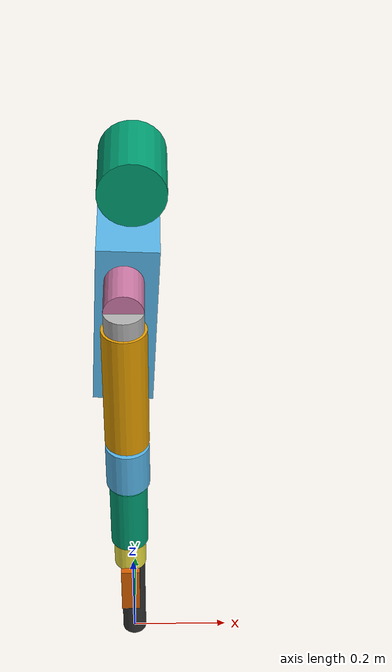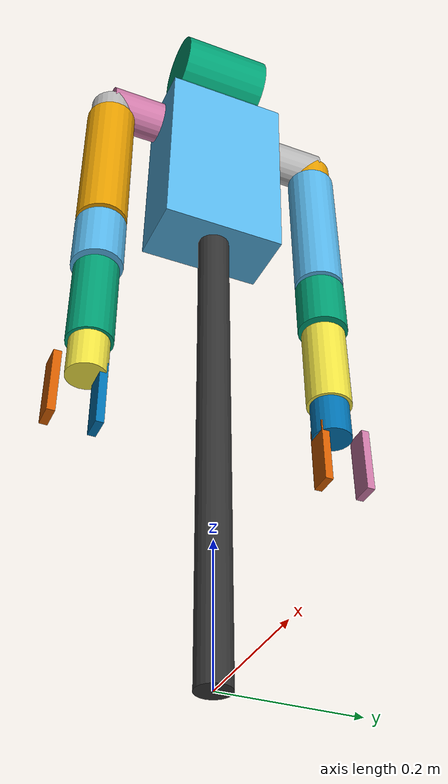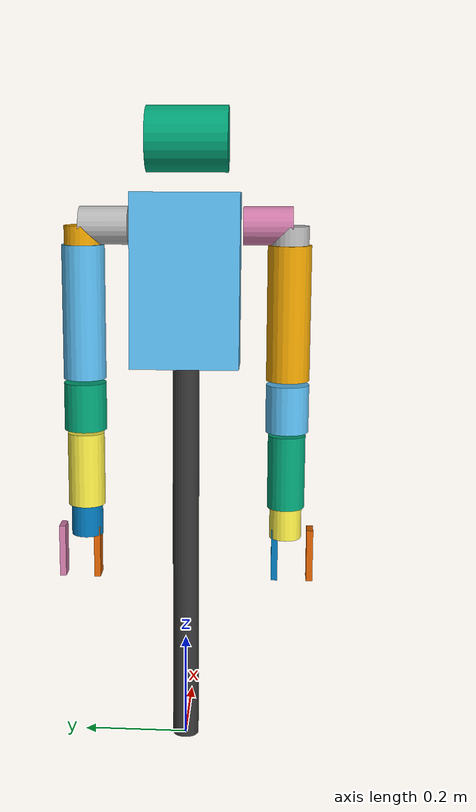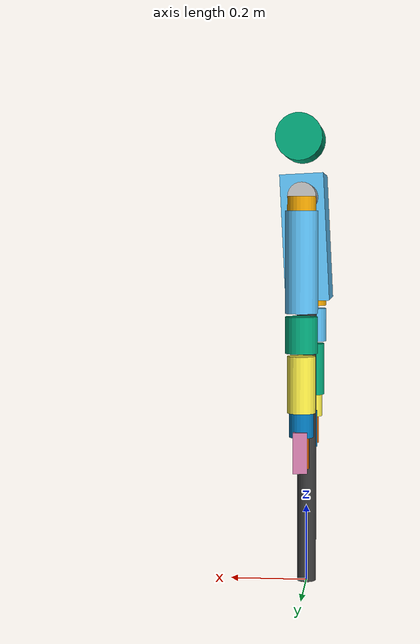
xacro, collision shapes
<?xml version="1.0"?>
<robot xmlns:xacro="http://www.ros.org/wiki/xacro" name="reachy">

<xacro:arg name="head" default="true"/>
<xacro:arg name="left_arm" default="true"/>
<xacro:arg name="right_arm" default="true"/>

<xacro:arg name="depth_camera" default="true"/>

<!-- pretty important for stability -->
<xacro:property name="damping" value="0" />
<xacro:property name="friction" value="0.1" />

<xacro:macro name="xmass" params="value"><mass value="${value}" /></xacro:macro>
<xacro:property name="camera_link" value="0.05" /> <!-- Size of square 'camera' box -->
<xacro:property name="camera_convergence" value="0.0" /> <!-- convergence angle (rad) of the cameras. 0=parallel-->

<xacro:macro name="inertial_cuboid" params="mass xyz rpy x_length y_length z_length">
  <inertial>
    <xacro:xmass value="${mass}" />
    <origin rpy="${rpy}" xyz="${xyz}"/>
    <inertia ixx="${mass * (y_length*y_length + z_length*z_length) / 12}" ixy="0.0" ixz="0.0"
             iyy="${mass * (x_length*x_length + z_length*z_length) / 12}" iyz="0.0"
             izz="${mass * (x_length*x_length + y_length*y_length) / 12}" />
  </inertial>
</xacro:macro>

<!-- Torso Link -->

  <material name="Grey">
    <color rgba="0.2 0.2 0.2 1"/>
  </material>

<link name="pedestal">
    <collision>
        <origin xyz="0 0 0.5" rpy="0 0.0 0" />
        <geometry>
	    <cylinder length="1" radius="0.025"/>
        </geometry>
    </collision>

    <visual name="">
        <origin xyz="0 0 0.5" rpy="0 0.0 0" />
        <geometry>
	    <cylinder length="1" radius="0.025"/>
        </geometry>
	 <material name="Grey"/>
    </visual>

</link>

<gazebo reference="pedestal">
  <material>Gazebo/Grey</material>
</gazebo>

<link name="torso">
    <inertial>
        <origin xyz="0.0 0.019 -0.009" rpy="0.0 0.0 0.0"/>
        <mass value="0.527"/>
        <inertia ixx="2.89598e-3" ixy="-1.16791e-6" ixz="-8.28749e-6" iyy="4.491e-3" iyz="2.343e-4" izz="3.995e-3"/>
    </inertial>
    <visual name="">
        <origin xyz="0.0 0.0 0.0" rpy="0.0 0.0 0.0"/>
        <geometry>
            <mesh filename="file://$(find reachy_description)/meshes/torso.dae"/>
        </geometry>
    </visual>
    <collision>
        <origin xyz="0 0 -0.1" rpy="0 0.05 0" />
        <geometry>
            <box size="0.11 0.2 0.32" />
        </geometry>
    </collision>
</link>

<!-- Head Links -->

<xacro:if value="$(arg head)">
<link name="head">
    <inertial>
        <origin xyz="-0.009 -0.002 0.059" rpy="0.0 0.0 0.0"/>
        <mass value="0.237"/>
        <inertia ixx="1.676e-3" ixy="3.068e-6" ixz="1.2449e-4" iyy="1.368e-3" iyz="3.360e-5" izz="8.425e-4"/>
    </inertial>
    <visual name="">
        <origin xyz="0.0 0.0 0.0" rpy="0.0 0.0 0.0"/>
        <geometry>
            <mesh filename="file://$(find reachy_description)/meshes/head.dae"/>

        </geometry>
    </visual>
    <collision>
        <origin xyz="-0.009 -0.002 0.059" rpy="${pi/2.0} 0.0 0.0"/>
        <geometry>
            <cylinder length="0.15" radius="0.06" />
        </geometry>
    </collision>
</link>

<link name="head_tip"/>
<link name="l_antenna_link">
    <inertial>
        <origin xyz="-0.001 0.0 0.008" rpy="0.0 0.0 0.0"/>
        <mass value="0.004"/>
        <inertia ixx="1.794e-7" ixy="-1.240e-5" ixz="1.91701e-8" iyy="1.5e-7" iyz="3.169e-6" izz="1.933e-7"/>
    </inertial>
    <visual name="">
        <origin xyz="0.0 0.0 0.0" rpy="0.0 0.0 0.0"/>
        <geometry>
            <mesh filename="file://$(find reachy_description)/meshes/antenna.dae"/>
        </geometry>
    </visual>
    <collision>
        <origin xyz="0.1 0.0 0.1" rpy="0.0 0 0.0"/>
        <geometry>
            <cylinder length="0.0" radius="0.0" />
        </geometry>
    </collision>
</link>

<link name="r_antenna_link">
    <inertial>
        <origin xyz="-0.001 0.0 0.008" rpy="0.0 0.0 0.0"/>
        <mass value="0.004"/>
        <inertia ixx="1.794e-7" ixy="-1.240e-5" ixz="1.91701e-8" iyy="1.5e-7" iyz="3.169e-6" izz="1.933e-7"/>
    </inertial>
    <visual name="">
        <origin xyz="0.0 0.0 0.0" rpy="0.0 0.0 0.0"/>
        <geometry>
            <mesh filename="file://$(find reachy_description)/meshes/antenna.dae"/>
        </geometry>
    </visual>
    <collision>
        <origin xyz="0.0 0.0 0.0" rpy="0.0 0.0 0.0"/>
        <geometry>
            <cylinder length="0.0" radius="0.0" />
        </geometry>
    </collision>
</link>
</xacro:if>

<!-- Right Arm Links -->

<xacro:if value="$(arg right_arm)">
<link name="r_shoulder">
    <inertial>
        <origin xyz="-0.016 0.036 0.0" rpy="${pi/2.0} ${pi/2.0} 0.0"/>
        <mass value="0.053"/>
        <inertia ixx="3.308e-4" ixy="9.972e-8" ixz="-2.037e-9" iyy="4.650e-5" iyz="2.113e-6" izz="3.545e-5"/>
    </inertial>
    <visual name="">
        <origin xyz="0.0 0.04 0.0" rpy="${pi/2.0} ${pi/2.0} 0.0"/>
        <geometry>
            <mesh filename="file://$(find reachy_description)/meshes/shoulder.dae"/>
        </geometry>
    </visual>
    <collision>
        <origin xyz="0.0 0.04 0.0" rpy="${pi/2.0} ${pi/2.0} 0.0"/>
        <geometry>
            <cylinder length="0.09" radius="0.035" />
        </geometry>
    </collision>
</link>

<link name="r_shoulder_x">
    <inertial>
        <origin xyz="-0.0 0.0 -0.019" rpy="0.0 0.0 0.0"/>
        <mass value="0.158"/>
        <inertia ixx="6.887e-5" ixy="5.393e-9" ixz="-9.155e-7" iyy="7.895e-5" iyz="4.512e-10" izz="4.235e-5"/>
    </inertial>
    <visual name="">
        <origin xyz="0.0 0.0 0.0" rpy="0.0 0.0 0.0"/>
        <geometry>
            <mesh filename="file://$(find reachy_description)/meshes/shoulder_x.dae"/>
        </geometry>
    </visual>
    <collision>
        <origin xyz="0 0 -0.02" rpy="0.0 0.0 0.0"/>
        <geometry>
            <cylinder length="0.04" radius="0.035" />
        </geometry>
    </collision>
</link>

<link name="r_upper_arm">
    <inertial>
        <origin xyz="-0.004 0.0 -0.1426" rpy="0.0 0.0 0.0"/>
        <mass value="0.430"/>
        <inertia ixx="3.264e-3" ixy="-4.027e-8" ixz="1.395e-4" iyy="3.345e-3" iyz="1.885e-6" izz="2.616e-4"/>
    </inertial>
    <visual name="">
        <origin xyz="0.0 0.0 -0.0526" rpy="0.0 0.0 0.0"/>
        <geometry>
            <mesh filename="file://$(find reachy_description)/meshes/upper_arm.dae"/>
        </geometry>
    </visual>
    <collision>
        <origin xyz="0.0 0.0 -0.16" rpy="0.0 0.0 0.0"/>
        <geometry>
            <cylinder length="0.25" radius="0.04" />
        </geometry>
    </collision>
</link>

<link name="r_forearm">
    <inertial>
        <origin xyz="-0.008 0.0 -0.058" rpy="0.0 0.0 0.0"/>
        <mass value="0.162"/>
        <inertia ixx="2.532e-4" ixy="-2.999e-8" ixz="1.448e-5" iyy="2.538e-4" iyz="-4.323e-8" izz="1.234e-4"/>
    </inertial>
    <visual name="">
        <origin xyz="0.0 0.0 0.0" rpy="0.0 0.0 0.0"/>
        <geometry>
            <mesh filename="file://$(find reachy_description)/meshes/forearm.dae"/>
        </geometry>
    </visual>
    <collision>
        <origin xyz="0.0 0.0 -0.058" rpy="0.0 0.0 0.0"/>
        <geometry>
            <cylinder length="0.09" radius="0.04" />
        </geometry>
    </collision>
</link>

<link name="r_wrist">
    <inertial>
        <origin xyz="0.0 0.0 -0.193" rpy="0.0 0.0 0.0"/>
        <mass value="0.197"/>
        <inertia ixx="6.157e-4" ixy="5.706e-8" ixz="-1.045e-5" iyy="6.280e-4" iyz="4.862e-7" izz="1.050e-4"/>
    </inertial>
    <visual name="">
        <origin xyz="0.0 0.0 -0.100" rpy="0.0 0.0 0.0"/>
        <geometry>
            <mesh filename="file://$(find reachy_description)/meshes/wrist.dae"/>
        </geometry>
    </visual>
    <collision>
        <origin xyz="0.0 0.0 -0.18" rpy="0.0 0.0 0.0"/>
        <geometry>
            <cylinder length="0.14" radius="0.035" />
        </geometry>
    </collision>
</link>

<link name="r_wrist2hand">
    <inertial>
        <origin xyz="0.0 0.0 0.014" rpy="0.0 0.0 0.0"/>
        <mass value="0.01"/>
        <inertia ixx="6.750e-6" ixy="3.732e-11" ixz="-1.581e-11" iyy="6.060e-6" iyz="-1.746e-12" izz="5.774e-6"/>
    </inertial>
    <visual name="">
        <origin xyz="0.0 0.0 0.0" rpy="0.0 0.0 0.0"/>
        <geometry>
            <mesh filename="file://$(find reachy_description)/meshes/wrist2hand.dae"/>
        </geometry>
    </visual>
    <collision>
        <origin xyz="0.0 0.0 -0.03" rpy="0.0 0.0 0.0"/>
        <geometry>
            <cylinder length="0.06" radius="0.03" />
        </geometry>
    </collision>
</link>

<link name="r_gripper_thumb">
    <inertial>
        <origin xyz="0.0 -0.008 0.0" rpy="0.0 ${pi/2.0} 0.0"/>
        <mass value="0.173"/>
        <inertia ixx="0.0001" izz="0.0001" iyy="0.0001" ixy="0" ixz="0" iyz="0" />

    </inertial>
    <visual name="">
        <origin xyz="0.0 0.0 0.0" rpy="0.0 ${pi/2.0} 0.0"/>
        <geometry>
            <mesh filename="file://$(find reachy_description)/meshes/r_gripper_thumb.dae"/>
        </geometry>
    </visual>
    <collision>
        <origin xyz="0.0 0.02 -0.06" rpy="0.0 ${pi/2.0} 0.0"/>
        <geometry>
            <box size="0.1 0.012 0.035" />
        </geometry>
    </collision>
</link>

<link name="r_gripper_finger">
    <inertial>
        <origin xyz="-0.00 -0.005 -0.0" rpy="${pi/2.0} 0.0 ${pi/2.0}"/>
        <mass value="0.035"/>

        <inertia ixx="0.00005" izz="0.00005" iyy="0.00005" ixy="0" ixz="0" iyz="0" />

    </inertial>
    <visual name="">
        <origin xyz="0.0 0.0 0.0" rpy="0.0 ${pi/2.0} 0.0"/>
        <geometry>
            <mesh filename="file://$(find reachy_description)/meshes/r_gripper_finger.dae"/>
        </geometry>
    </visual>
    <collision>
        <origin xyz="0.0 -0.01 -0.02" rpy="0.0 ${pi/2.0} 0.0"/>
        <geometry>
            <box size="0.1 0.012 0.035" />
        </geometry>
    </collision>
</link>

<link name="right_tip"/>
</xacro:if>

<!-- Left Arm Links -->

<xacro:if value="$(arg left_arm)">
<link name="l_shoulder">
    <inertial>
        <origin xyz="-0.016 -0.036 0.0" rpy="${-pi/2.0} ${pi/2.0} 0.0"/>
        <mass value="0.053"/>
        <inertia ixx="3.308e-4" ixy="9.972e-8" ixz="-2.037e-9" iyy="4.650e-5" iyz="2.113e-6" izz="3.545e-5"/>
    </inertial>
    <visual name="">
        <origin xyz="0.0 -0.04 0.0" rpy="${-pi/2.0} ${pi/2.0} 0.0"/>
        <geometry>
            <mesh filename="file://$(find reachy_description)/meshes/shoulder.dae"/>
        </geometry>
    </visual>
    <collision>
        <origin xyz="0.0 -0.04 0.0" rpy="${-pi/2.0} ${pi/2.0} 0.0"/>
        <geometry>
            <cylinder length="0.09" radius="0.035" />
        </geometry>
    </collision>
</link>

<link name="l_shoulder_x">
    <inertial>
        <origin xyz="0.0 0.0 -0.019" rpy="0.0 0.0 0.0"/>
        <mass value="0.158"/>
        <inertia ixx="6.887e-5" ixy="5.393e-9" ixz="-9.155e-7" iyy="7.895e-5" iyz="4.512e-10" izz="4.235e-5"/>
    </inertial>
    <visual name="">
        <origin xyz="0.0 0.0 0.0" rpy="0.0 0.0 0.0"/>
        <geometry>
            <mesh filename="file://$(find reachy_description)/meshes/shoulder_x.dae"/>
        </geometry>
    </visual>
    <collision>
        <origin xyz="0 0 -0.02" rpy="0.0 0.0 0.0"/>
        <geometry>
            <cylinder length="0.04" radius="0.035" />
        </geometry>
    </collision>
</link>

<link name="l_upper_arm">
    <inertial>
        <origin xyz="-0.004 0.0 -0.1426" rpy="0.0 0.0 0.0"/>
        <mass value="0.430"/>
        <inertia ixx="3.264e-3" ixy="-4.027e-8" ixz="1.395e-4" iyy="3.345e-3" iyz="1.885e-6" izz="2.616e-4"/>
    </inertial>
    <visual name="">
        <origin xyz="0.0 0.0 -0.0526" rpy="0.0 0.0 0.0"/>
        <geometry>
            <mesh filename="file://$(find reachy_description)/meshes/upper_arm.dae"/>
        </geometry>
    </visual>
    <collision>
        <origin xyz="0.0 0.0 -0.16" rpy="0.0 0.0 0.0"/>
        <geometry>
            <cylinder length="0.25" radius="0.04" />
        </geometry>
    </collision>
</link>

<link name="l_forearm">
    <inertial>
        <origin xyz="-0.008 0.0 -0.058" rpy="0.0 0.0 0.0"/>
        <mass value="0.162"/>
        <inertia ixx="2.532e-4" ixy="-2.999e-8" ixz="1.448e-5" iyy="2.538e-4" iyz="-4.323e-8" izz="1.234e-4"/>
    </inertial>
    <visual name="">
        <origin xyz="0.0 0.0 0.0" rpy="0.0 0.0 0.0"/>
        <geometry>
            <mesh filename="file://$(find reachy_description)/meshes/forearm.dae"/>
        </geometry>
    </visual>
    <collision>
        <origin xyz="0.0 0.0 -0.058" rpy="0.0 0.0 0.0"/>
        <geometry>
            <cylinder length="0.09" radius="0.04" />
        </geometry>
    </collision>
</link>

<link name="l_wrist">
    <inertial>
        <origin xyz="0.0 0.0 -0.193" rpy="0.0 0.0 0.0"/>
        <mass value="0.197"/>
        <inertia ixx="6.157e-4" ixy="5.706e-8" ixz="-1.045e-5" iyy="6.280e-4" iyz="4.862e-7" izz="1.050e-4"/>
    </inertial>
    <visual name="">
        <origin xyz="0.0 0.0 -0.1" rpy="0.0 0.0 0.0"/>
        <geometry>
            <mesh filename="file://$(find reachy_description)/meshes/wrist.dae"/>
        </geometry>
    </visual>
    <collision>
        <origin xyz="0.0 0.0 -0.18" rpy="0.0 0.0 0.0"/>
        <geometry>
            <cylinder length="0.14" radius="0.035" />
        </geometry>
    </collision>
</link>

<link name="l_wrist2hand">
    <inertial>
        <origin xyz="0.0 0.0 0.014" rpy="0.0 0.0 0.0"/>
        <mass value="0.01"/>
        <inertia ixx="6.750e-6" ixy="3.732e-11" ixz="-1.581e-11" iyy="6.060e-6" iyz="-1.746e-12" izz="5.774e-6"/>
    </inertial>
    <visual name="">
        <origin xyz="0.0 0.0 0.0" rpy="0.0 0.0 0.0"/>
        <geometry>
            <mesh filename="file://$(find reachy_description)/meshes/wrist2hand.dae"/>
        </geometry>
    </visual>
    <collision>
        <origin xyz="0.0 0.0 -0.03" rpy="0.0 0.0 0.0"/>
        <geometry>
            <cylinder length="0.06" radius="0.03" />
        </geometry>
    </collision>
</link>

<link name="l_gripper_thumb">
    <inertial>
        <origin xyz="0.0 0.008 0.0" rpy="0.0 ${pi/2.0} 0.0"/>
        <mass value="0.173"/>
        <inertia ixx="0.0001" izz="0.0001" iyy="0.0001" ixy="0" ixz="0" iyz="0" />

    </inertial>
    <visual name="">
        <origin xyz="0.0 0.0 0.0" rpy="0.0 ${pi/2.0} 0.0"/>
        <geometry>
            <mesh filename="file://$(find reachy_description)/meshes/l_gripper_thumb.dae"/>
        </geometry>
    </visual>
    <collision>
        <origin xyz="0.0 -0.02 -0.06" rpy="0.0 ${pi/2.0} 0.0"/>
        <geometry>
            <box size="0.1 0.012 0.035" />
        </geometry>
    </collision>
</link>

<link name="l_gripper_finger">
    <inertial>
        <origin xyz="-0.00 0.005 -0.0" rpy="${pi/2.0} 0.0 ${pi/2.0}"/>
        <mass value="0.035"/>
        <inertia ixx="0.00005" izz="0.00005" iyy="0.00005" ixy="0" ixz="0" iyz="0" />
    </inertial>
    <visual name="">
        <origin xyz="0.0 0.0 0.0" rpy="0.0 ${pi/2.0} 0.0"/>
        <geometry>
            <mesh filename="file://$(find reachy_description)/meshes/l_gripper_finger.dae"/>
        </geometry>
    </visual>
    <collision>
        <origin xyz="0.0 0.01 -0.02" rpy="0.0 ${pi/2.0} 0.0"/>
        <geometry>
            <box size="0.1 0.012 0.035" />
        </geometry>
    </collision>
</link>

<link name="left_tip"/>
</xacro:if>

<link name="world" />

<joint name="world_to_pedestal=" type="fixed">
     <parent link="world"/>
     <child link="pedestal"/>
</joint>

<!-- Head and Torso joints -->

<joint name="pedestal_link" type="fixed">
    <origin xyz="0 0 1" rpy="0 0 0" />
    <parent link="pedestal" />
    <child link="torso" />
</joint>

<xacro:if value="$(arg head)">
<joint name="r_antenna" type="revolute">
    <origin xyz="-0.052 -0.057 0.086" rpy="-0.166 -1.054 1.11"/>
    <parent link="head"/>
    <child link="r_antenna_link"/>
    <axis xyz="0 0 1"/>
   <limit lower="-2.618" upper="2.618" effort="10." velocity="0.0"/>
    <dynamics damping="${damping}" friction="${friction}" />
</joint>

<joint name="l_antenna" type="revolute">
    <origin xyz="-0.052 0.057 0.086" rpy="0.166 -1.054 -1.11"/>
    <parent link="head"/>
    <child link="l_antenna_link"/>
    <axis xyz="0 0 1"/>
   <limit lower="-2.618" upper="2.618" effort="10." velocity="0.0"/>
    <dynamics damping="${damping}" friction="${friction}" />
</joint>
</xacro:if>

<!-- Right Arm joint -->

<xacro:if value="$(arg right_arm)">
<joint name="r_shoulder_pitch" type="revolute">
    <origin xyz="0.0 -0.19 0.0" rpy="0.0 0.0 0.0"/>
    <parent link="torso"/>
    <child link="r_shoulder"/>
    <axis xyz="0 1 0"/>
   <limit lower="-2.618" upper="${pi/2.0}" effort="10." velocity="0.0"/>
    <dynamics damping="${damping}" friction="${friction}" />
</joint>

<joint name="r_shoulder_roll" type="revolute">
    <origin xyz="0 0 0" rpy="0.0 0.0 0.0"/>
    <parent link="r_shoulder"/>
    <child link="r_shoulder_x"/>
    <axis xyz="1 0 0"/>
   <limit lower="${-pi}" upper="0.174" effort="10." velocity="0.0"/>
    <dynamics damping="${damping}" friction="${friction}" />
</joint>

<joint name="r_arm_yaw" type="revolute">
    <origin xyz="0 0 0" rpy="0.0 0.0 0.0"/>
    <parent link="r_shoulder_x"/>
    <child link="r_upper_arm"/>
    <axis xyz="0 0 1"/>
   <limit lower="${-pi/2.0}" upper="${pi/2.0}" effort="10." velocity="0.0"/>
    <dynamics damping="${damping}" friction="${friction}" />
</joint>

<joint name="r_elbow_pitch" type="revolute">
    <origin xyz="0 0 -0.28" rpy="0.0 0.0 0.0"/>
    <parent link="r_upper_arm"/>
    <child link="r_forearm"/>
    <axis xyz="0 1 0"/>
   <limit lower="-2.182" upper="0" effort="10." velocity="0.0"/>
    <dynamics damping="${damping}" friction="${friction}" />
</joint>

<joint name="r_forearm_yaw" type="revolute">
    <origin xyz="0 0 0" rpy="0.0 0.0 0.0"/>
    <parent link="r_forearm"/>
    <child link="r_wrist"/>
    <axis xyz="0 0 1"/>
   <limit lower="-1.745" upper="1.745" effort="10." velocity="0.0"/>
    <dynamics damping="${damping}" friction="${friction}" />
</joint>

<joint name="r_wrist_pitch" type="revolute">
    <origin xyz="0 0 -0.25" rpy="0.0 0.0 0.0"/>
    <parent link="r_wrist"/>
    <child link="r_wrist2hand"/>
    <axis xyz="0 1 0"/>
   <limit lower="-0.785" upper="0.785" effort="10." velocity="0.0"/>
    <dynamics damping="${damping}" friction="${friction}" />
</joint>

<joint name="r_wrist_roll" type="revolute">
    <origin xyz="0 0 -0.0325" rpy="0.0 0.0 0.0"/>
    <parent link="r_wrist2hand"/>
    <child link="r_gripper_thumb"/>
    <axis xyz="1 0 0"/>
   <limit lower="-0.785" upper="0.785" effort="10." velocity="0.0"/>
    <dynamics damping="${damping}" friction="${friction}" />
</joint>

<joint name="r_gripper" type="revolute">
    <origin xyz="0.0 -0.037 -0.03998" rpy="0.0 0.0 0.0"/>
    <parent link="r_gripper_thumb"/>
    <child link="r_gripper_finger"/>
    <axis xyz="1 0 0"/>
   <limit lower="-1.2" upper="0.35" effort="10." velocity="0.0"/>
    <dynamics damping="${damping}" friction="${friction}" />
</joint>

<gazebo reference="r_gripper">
    <provideFeedback>true</provideFeedback>
</gazebo>
<gazebo>
   <plugin name="gazebo_ros_ft" filename="libgazebo_ros_ft_sensor.so">

        <ros>
          <!-- Add namespace and remap the default topic -->
          <namespace>/right_force_sensor</namespace>
          <argument>wrench:=r_gripper_ft_sensor</argument>
        </ros>

        <!-- Replace camelCase elements with camel_case ones -->
        <joint_name>r_gripper</joint_name>
        <update_rate>200</update_rate>
        <update_rate>1</update_rate>
        <gaussian_noise>0.01</gaussian_noise>
      </plugin>
</gazebo>

<joint name="r_tip" type="fixed">
    <origin xyz="0 -0.012 -0.085" rpy="0 0 0" />
    <parent link="r_gripper_thumb" />
    <child link="right_tip" />
</joint>
</xacro:if>

<!-- Left arm joints -->
<xacro:if value="$(arg left_arm)">
<joint name="l_shoulder_pitch" type="revolute">
    <origin xyz="0.0 0.19 0.0" rpy="0.0 0.0 0.0"/>
    <parent link="torso"/>
    <child link="l_shoulder"/>
    <axis xyz="0 1 0"/>
   <limit lower="-2.618" upper="${pi/2.0}" effort="10." velocity="0.0"/>
    <dynamics damping="${damping}" friction="${friction}" />
</joint>

<joint name="l_shoulder_roll" type="revolute">
    <origin xyz="0 0 0" rpy="0.0 0.0 0.0"/>
    <parent link="l_shoulder"/>
    <child link="l_shoulder_x"/>
    <axis xyz="1 0 0"/>
   <limit lower="-0.174" upper="${pi}" effort="10." velocity="0.0"/>
    <dynamics damping="${damping}" friction="${friction}" />
</joint>

<joint name="l_arm_yaw" type="revolute">
    <origin xyz="0 0 0" rpy="0.0 0.0 0.0"/>
    <parent link="l_shoulder_x"/>
    <child link="l_upper_arm"/>
    <axis xyz="0 0 1"/>
   <limit lower="${-pi/2.0}" upper="${pi/2.0}" effort="10." velocity="0.0"/>
    <dynamics damping="${damping}" friction="${friction}" />
</joint>

<joint name="l_elbow_pitch" type="revolute">
    <origin xyz="0 0 -0.28" rpy="0.0 0.0 0.0"/>
    <parent link="l_upper_arm"/>
    <child link="l_forearm"/>
    <axis xyz="0 1 0"/>
   <limit lower="-2.182" upper="0" effort="10." velocity="0.0"/>
    <dynamics damping="${damping}" friction="${friction}" />
</joint>

<joint name="l_forearm_yaw" type="revolute">
    <origin xyz="0 0 0" rpy="0.0 0.0 0.0"/>
    <parent link="l_forearm"/>
    <child link="l_wrist"/>
    <axis xyz="0 0 1"/>
   <limit lower="-1.745" upper="1.745" effort="10." velocity="0.0"/>
    <dynamics damping="${damping}" friction="${friction}" />
</joint>

<joint name="l_wrist_pitch" type="revolute">
    <origin xyz="0 0 -0.25" rpy="0.0 0.0 0.0"/>
    <parent link="l_wrist"/>
    <child link="l_wrist2hand"/>
    <axis xyz="0 1 0"/>
   <limit lower="-0.785" upper="0.785" effort="10." velocity="0.0"/>
    <dynamics damping="${damping}" friction="${friction}" />
</joint>

<joint name="l_wrist_roll" type="revolute">
    <origin xyz="0 0 -0.0325" rpy="0.0 0.0 0.0"/>
    <parent link="l_wrist2hand"/>
    <child link="l_gripper_thumb"/>
    <axis xyz="1 0 0"/>
   <limit lower="-0.785" upper="0.785" effort="10." velocity="0.0"/>
    <dynamics damping="${damping}" friction="${friction}" />
</joint>

<joint name="l_gripper" type="revolute">
    <origin xyz="0.0 0.037 -0.03998" rpy="0.0 0.0 0.0"/>
    <parent link="l_gripper_thumb"/>
    <child link="l_gripper_finger"/>
    <axis xyz="1 0 0"/>
   <limit lower="-0.35" upper="1.2" effort="10." velocity="0.0"/>
    <dynamics damping="${damping}" friction="${friction}" />
</joint>

<gazebo>
   <plugin name="gazebo_ros_ft" filename="libgazebo_ros_ft_sensor.so">

        <ros>
          <!-- Add namespace and remap the default topic -->
          <namespace>/left_force_sensor</namespace>
          <argument>wrench:=l_gripper_ft_sensor</argument>
        </ros>

        <!-- Replace camelCase elements with camel_case ones -->
        <joint_name>l_gripper</joint_name>
        <update_rate>200</update_rate>
        <update_rate>1</update_rate>
        <gaussian_noise>0.01</gaussian_noise>
      </plugin>
</gazebo>

<joint name="l_tip" type="fixed">
    <origin xyz="0 0.012 -0.085" rpy="0 0 0" />
    <parent link="l_gripper_thumb" />
    <child link="left_tip" />
</joint>
</xacro:if>

<!-- Head joint... -->

<!-- ...with a fixed joint -->

<!-- ...with a ball orbita joint -->
<xacro:if value="$(arg head)">
<joint name="neck_roll" type="revolute">
    <origin xyz="0.015 0.0 0.095" rpy="0 0.174 0" />
    <parent link="torso"/>
    <child link="head_x"/>
    <axis xyz="1 0 0"/>
   <limit lower="-0.8" upper="0.8" effort="10." velocity="0.0"/>
    <dynamics damping="${damping}" friction="${friction}" />
</joint>

<link name="head_x" >
<inertial>
  <origin xyz="0.0 0.0 0.0" rpy="0.0 0.0 0.0"/>
  <mass value="0.01"/>
  <inertia ixx="1e-3" ixy="0" ixz="0" iyy="1e-3" iyz="0" izz="1e-3"/>
</inertial>
</link>

<joint name="neck_pitch" type="revolute">
    <origin xyz="0 0 0" rpy="0.0 0.0 0.0"/>
    <parent link="head_x"/>
    <child link="head_y"/>
    <axis xyz="0 1 0"/>
   <limit lower="-0.8" upper="1.13" effort="10." velocity="0.0"/>
    <dynamics damping="${damping}" friction="${friction}" />
</joint>

<link name="head_y" >
<inertial>
  <origin xyz="0.0 0.0 0.0" rpy="0.0 0.0 0.0"/>
  <mass value="0.01"/>
  <inertia ixx="1e-3" ixy="0" ixz="0" iyy="1e-3" iyz="0" izz="1e-3"/>
</inertial>
</link>

<joint name="neck_yaw" type="revolute">
    <origin xyz="0 0 0" rpy="0.0 0.0 0.0"/>
    <parent link="head_y"/>
    <child link="head_z"/>
    <axis xyz="0 0 1"/>
   <limit lower="-2.79" upper="2.79" effort="10." velocity="0.0"/>
    <dynamics damping="${damping}" friction="${friction}" />
</joint>

<link name="head_z" >
<inertial>
  <origin xyz="0.0 0.0 0.0" rpy="0.0 0.0 0.0"/>
  <mass value="0.01"/>
  <inertia ixx="1e-3" ixy="0" ixz="0" iyy="1e-3" iyz="0" izz="1e-3"/>
</inertial>
</link>

<joint name="neck_fixed" type="fixed">
    <origin xyz="0 0 0" rpy="0.0 0.0 0.0"/>
    <parent link="head_z" />
    <child link="head" />
</joint>

<joint name="h_tip" type="fixed">
    <origin xyz="0 0 0" rpy="0 0 0" />
    <parent link="head" />
    <child link="head_tip" />
</joint>

<!-- Fixed Orbita Arms Visuals -->

<joint name="neck_top" type="fixed">
    <origin xyz="0.0067 0.0 0.0478" rpy="0 0.174 0"/>
    <parent link="torso"/>
    <child link="top_neck_arm"/>
</joint>

<link name="top_neck_arm">
    <visual name="">
        <origin xyz="0.0 0.0 0.0" rpy="0.0 0.0 0.5236"/>
        <geometry>
            <mesh filename="file://$(find reachy_description)/meshes/orbita_arm.dae"/>
        </geometry>
    </visual>
    <collision>
        <origin xyz="0.0 0.0 0.0" rpy="0.0 0.0 0.0"/>
        <geometry>
            <cylinder length="0.0" radius="0.0" />
        </geometry>
    </collision>
</link>

<joint name="neck_middle" type="fixed">
    <origin xyz="0.0067 0.0 0.0478" rpy="0 0.174 0"/>
    <parent link="torso"/>
    <child link="middle_neck_arm"/>
</joint>

<link name="middle_neck_arm">
    <visual name="">
        <origin xyz="0.0 0.0 0.0" rpy="0.0 0.0 2.618"/>
        <geometry>
            <mesh filename="file://$(find reachy_description)/meshes/orbita_arm.dae"/>
        </geometry>
    </visual>
    <collision>
        <origin xyz="0.0 0.0 0.0" rpy="0.0 0.0 0.0"/>
        <geometry>
            <cylinder length="0.0" radius="0.0" />
        </geometry>
    </collision>
</link>

<joint name="neck_bottom" type="fixed">
    <origin xyz="0.0067 0.0 0.0478" rpy="0 0.174 0"/>
    <parent link="torso"/>
    <child link="bottom_neck_arm"/>
</joint>

<link name="bottom_neck_arm">
    <visual name="">
        <origin xyz="0.0 0.0 0.0" rpy="0.0 0.0 ${-pi/2.0}"/>
        <geometry>
            <mesh filename="file://$(find reachy_description)/meshes/orbita_arm.dae"/>
        </geometry>
    </visual>
    <collision>
        <origin xyz="0.0 0.0 0.0" rpy="0.0 0.0 0.0"/>
        <geometry>
            <cylinder length="0.0" radius="0.0" />
        </geometry>
    </collision>
</link>
</xacro:if>

<!-- Cameras -->
<xacro:if value="$(arg head)">
<joint name="left_cam_fixed" type="fixed">
    <origin xyz="0.02 0.03625 0.06105" rpy="0.0 0.0  ${-camera_convergence/2.0}"/>
    <parent link="head" />
    <child link="left_camera" />
</joint>

<link name="left_camera" >

    <inertial>
      <mass value="1e-5" />
      <origin xyz="0 0 0" rpy="0 0 0"/>
      <inertia ixx="1e-6" ixy="0" ixz="0" iyy="1e-6" iyz="0" izz="1e-6" />
    </inertial>
 </link>

 <link name="left_camera_optical">
  </link>

<joint name="left_camera_optical_joint" type="fixed">
    <!-- these values have to be these values otherwise the gazebo camera
        image won't be aligned properly with the frame it is supposedly
        originating from -->
    <origin xyz="0 0 0" rpy="${-pi/2.0} 0 ${-pi/2.0}"/>
    <parent link="left_camera"/>
    <child link="left_camera_optical"/>
  </joint>

<joint name="right_cam_fixed" type="fixed">
    <origin xyz="0.02 -0.03625 0.06105" rpy="0.0 0.0 ${camera_convergence/2.0}"/>
    <parent link="head" />
    <child link="right_camera" />
</joint>

<link name="right_camera" >

    <inertial>
      <mass value="1e-5" />
      <origin xyz="0 0 0" rpy="0 0 0"/>
      <inertia ixx="1e-6" ixy="0" ixz="0" iyy="1e-6" iyz="0" izz="1e-6" />
    </inertial>
 </link>

 <link name="right_camera_optical">
  </link>

<joint name="right_camera_optical_joint" type="fixed">
    <!-- these values have to be these values otherwise the gazebo camera
        image won't be aligned properly with the frame it is supposedly
        originating from -->
    <origin xyz="0 0 0" rpy="${-pi/2.0} 0 ${-pi/2.0}"/>
    <parent link="right_camera"/>
    <child link="right_camera_optical"/>
  </joint>

  <!-- cameras -->
  <!--              That pixel's noise value is added to each of its color -->
  <!--              channels, which at that point lie in the range [0,1]. -\-> -->

 <gazebo reference="left_camera">
    <sensor type="camera" name="left_camera">

          <!-- Set always_on only sensor, not on plugin -->
          <always_on>0</always_on>

          <!-- Set update_rate only sensor, not on plugin -->
          <update_rate>30</update_rate>

          <camera name="left_camera">
        <horizontal_fov>1.3962634</horizontal_fov>
        <image>
          <width>800</width>
          <height>800</height>
          <format>R8G8B8</format>
        </image>
            <distortion>
              <k1>0.0</k1>
              <k2>0.0</k2>
              <k3>0.0</k3>
              <p1>0.0</p1>
              <p2>0.0</p2>
              <center>0.5 0.5</center>
            </distortion>

            <noise>
              <type>gaussian</type>
              <mean>0.0</mean>
              <stddev>0.007</stddev>
            </noise>

          </camera>

          <!-- Use camera, not camera_triggered -->
          <plugin name="left_camera_controller" filename="libgazebo_ros_camera.so">

            <!-- Set camera name. If empty, defaults to sensor name (i.e. "sensor_name") -->
            <camera_name>left_camera</camera_name>

            <!-- Set TF frame name. If empty, defaults to link name (i.e. "link_name") -->
            <frame_name>left_camera_optical</frame_name>

            <hack_baseline>0.07</hack_baseline>

            <!-- No need to repeat distortion parameters or to set autoDistortion -->
          </plugin>
        </sensor>
      </gazebo>

 <gazebo reference="right_camera">
    <sensor type="camera" name="right_camera">

          <!-- Set always_on only sensor, not on plugin -->
          <always_on>0</always_on>

          <!-- Set update_rate only sensor, not on plugin -->
          <update_rate>30</update_rate>

          <camera name="right_camera">
        <horizontal_fov>1.3962634</horizontal_fov>
        <image>
          <width>800</width>
          <height>800</height>
          <format>R8G8B8</format>
        </image>
            <distortion>
              <k1>0.0</k1>
              <k2>0.0</k2>
              <k3>0.0</k3>
              <p1>0.0</p1>
              <p2>0.0</p2>
              <center>0.5 0.5</center>
            </distortion>

            <noise>
              <type>gaussian</type>
              <mean>0.0</mean>
              <stddev>0.007</stddev>
            </noise>

          </camera>

          <!-- Use camera, not camera_triggered -->
          <plugin name="right_camera_controller" filename="libgazebo_ros_camera.so">

            <!-- Set camera name. If empty, defaults to sensor name (i.e. "sensor_name") -->
            <camera_name>right_camera</camera_name>

            <!-- Set TF frame name. If empty, defaults to link name (i.e. "link_name") -->
            <frame_name>right_camera_optical</frame_name>

            <hack_baseline>0.07</hack_baseline>

            <!-- No need to repeat distortion parameters or to set autoDistortion -->
          </plugin>
        </sensor>
      </gazebo>

<link name="depth_camera_link" >

    <inertial>
      <mass value="1e-5" />
      <origin xyz="0 0 0" rpy="0 0 0"/>
      <inertia ixx="1e-6" ixy="0" ixz="0" iyy="1e-6" iyz="0" izz="1e-6" />
    </inertial>

 </link>

<joint name="depth_cam_fixed" type="fixed">
    <origin xyz="0.02 0 0.06105" rpy="0.0 0.0 0"/>
    <parent link="head" />
    <child link="depth_camera_link" />
</joint>

 <link name="depth_camera_optical">
  </link>

<joint name="depth_camera_optical_joint" type="fixed">
    <!-- these values have to be these values otherwise the gazebo camera
        image won't be aligned properly with the frame it is supposedly
        originating from -->
    <origin xyz="0 0 0" rpy="${-pi/2.0} 0 ${-pi/2.0}"/>
    <parent link="depth_camera_link"/>
    <child link="depth_camera_optical"/>
  </joint>

<xacro:if value="$(arg depth_camera)">
<gazebo reference="depth_camera_link">
    <sensor name="depth_camera" type="depth">
        <always_on>true</always_on>
        <update_rate>15</update_rate>
        <pose>0 0 0 0 0 0</pose>
        <camera name="realsense_depth_camera">
            <horizontal_fov>1.46608</horizontal_fov>
            <image>
                <width>424</width>
                <height>240</height>
                <format>B8G8R8</format>
            </image>
            <clip>
                <near>0.05</near>
                <far>8</far>
            </clip>
        </camera>
        <!-- https://github.com/mlherd/ros2_turtlebot3_waffle_intel_realsense -->
        <plugin name="intel_realsense_r200_depth_driver" filename="libgazebo_ros_camera.so">
            <ros>
                <namespace>depth_camera</namespace>
                <remapping>depth_camera/image_raw:=color/image_raw</remapping>
                <remapping>depth_camera/depth/image_raw:=depth/image_rect_raw</remapping>
                <remapping>depth_camera/camera_info:=camera_info</remapping>
                <remapping>depth_camera/depth/camera_info:=depth/camera_info</remapping>
                <remapping>depth_camera/points:=depth/points</remapping>
            </ros>
            <camera_name>depth_camera</camera_name>
            <frame_name>depth_camera_optical</frame_name>
            <hack_baseline>0.07</hack_baseline>
            <min_depth>0.05</min_depth>
            <max_depth>8.0</max_depth>
        </plugin>
    </sensor>
</gazebo>

</xacro:if>

</xacro:if>

  <gazebo>
    <plugin name="gazebo_ros2_control" filename="libgazebo_ros2_control.so">
      <robot_sim_type>gazebo_ros2_control/GazeboSystem</robot_sim_type>
      <parameters>$(find reachy_gazebo)/config/reachy_gazebo_controllers.yaml</parameters>
    </plugin>
</gazebo>

<!-- Declare transmission/motors -->

<xacro:arg name="initial_positions_file" default="$(find reachy_description)/urdf/initial_positions.yaml" />
<xacro:include filename="$(find reachy_description)/urdf/reachy_ros2_control.xacro" />
<xacro:reachy_ros2_control name="ReachyFakeSystem" initial_positions_file="$(arg initial_positions_file)"/>

</robot>
